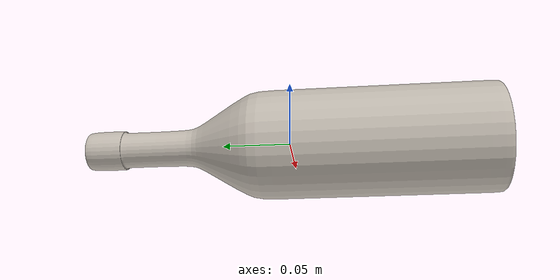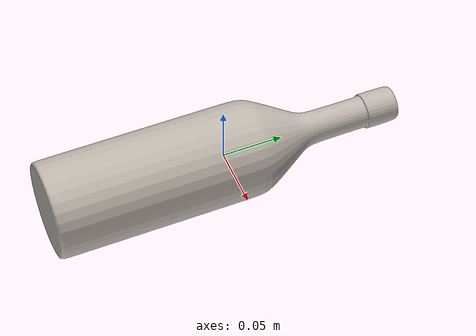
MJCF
<mujoco model="vase_cefb12c1">
  <compiler angle="radian"/>
  <asset>
    <texture type="2d" name="vase_cefb12c1_tex" file="vase_cefb12c1_visual_0.png"/>
    <material name="vase_cefb12c1_mat" texture="vase_cefb12c1_tex"/>
    <mesh name="vase_cefb12c1_visual" content_type="model/obj" file="vase_cefb12c1_visual.obj" scale="-1 1.00674 1"/>
    <mesh name="vase_cefb12c1_c0" content_type="model/obj" file="vase_cefb12c1_c0.obj" scale="-1 1.00674 1"/>
    <mesh name="vase_cefb12c1_c1" content_type="model/obj" file="vase_cefb12c1_c1.obj" scale="-1 1.00674 1"/>
  </asset>
  <worldbody>
    <body name="vase_cefb12c1">
      <freejoint/>
      <geom name="vase_cefb12c1_visual" type="mesh" mesh="vase_cefb12c1_visual" mass="1e-8" contype="0" conaffinity="0" group="2" material="vase_cefb12c1_mat"/>
      <geom name="vase_cefb12c1_c0" type="mesh" mesh="vase_cefb12c1_c0" group="3" density="1190.58" friction="0.9 0.05 0.005" condim="4" rgba="0.4 0.5 0.9 0.35"/>
      <geom name="vase_cefb12c1_c1" type="mesh" mesh="vase_cefb12c1_c1" group="3" density="1190.58" friction="0.9 0.05 0.005" condim="4" rgba="0.4 0.5 0.9 0.35"/>
    </body>
  </worldbody>
</mujoco>
